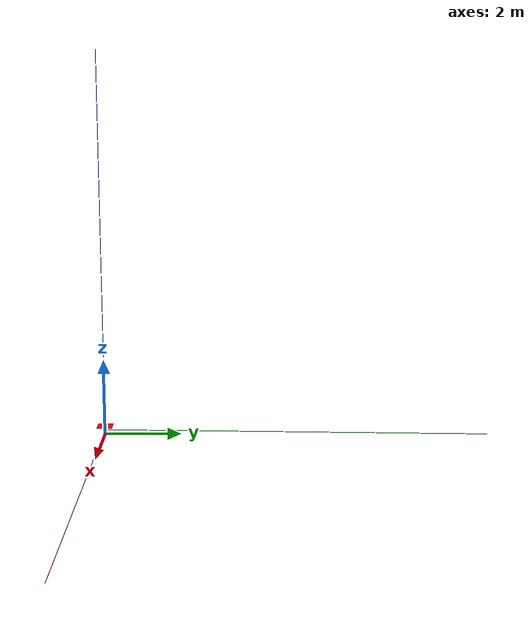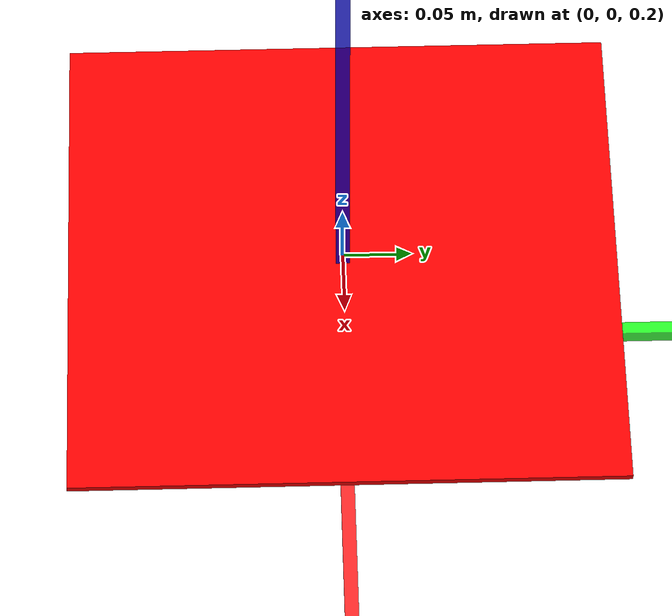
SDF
<sdf version="1.9">
 <world name="runway">
  <physics name="1ms" type="ignore">
   <max_step_size>0.001</max_step_size>
   <real_time_factor>1.0</real_time_factor>
  </physics>
  <plugin filename="gz-sim-physics-system" name="gz::sim::systems::Physics"/>
  <plugin filename="gz-sim-sensors-system" name="gz::sim::systems::Sensors">
   <render_engine>ogre2</render_engine>
  </plugin>
  <plugin filename="gz-sim-user-commands-system" name="gz::sim::systems::UserCommands"/>
  <plugin filename="gz-sim-scene-broadcaster-system" name="gz::sim::systems::SceneBroadcaster"/>
  <plugin filename="gz-sim-imu-system" name="gz::sim::systems::Imu"/>
  <plugin filename="gz-sim-navsat-system" name="gz::sim::systems::NavSat"/>
  <scene><ambient>1.0 1.0 1.0</ambient><background>0.8 0.8 0.8</background></scene>
  <spherical_coordinates>
   <latitude_deg>-35.363262</latitude_deg>
   <longitude_deg>149.165237</longitude_deg>
   <elevation>584</elevation>
   <heading_deg>0</heading_deg>
   <surface_model>EARTH_WGS84</surface_model>
  </spherical_coordinates>
  <light type="directional" name="sun">
   <pose>0 0 10 0 0 0</pose>
   <diffuse>0.8 0.8 0.8 1</diffuse>
   <specular>0.8 0.8 0.8 1</specular>
   <attenuation>
    <range>1000</range>
    <constant>0.9</constant>
    <linear>0.01</linear>
    <quadratic>0.001</quadratic>
   </attenuation>
   <direction>-0.5 0.1 -0.9</direction>
  </light>
  <model name="axes">
   <static>1</static>
   <link name="link">
    <visual name="r">
     <cast_shadows>0</cast_shadows>
     <pose>5 0 0.1 0 0 0</pose>
     <geometry><box><size>10 0.01 0.01</size></box></geometry>
     <material>
      <ambient>1 0 0 0.8</ambient>
      <diffuse>1 0 0 0.8</diffuse>
      <emissive>1 0 0 0.8</emissive>
      <specular>0.5 0.5 0.5 0.8</specular>
     </material>
    </visual>
    <visual name="g">
     <cast_shadows>0</cast_shadows>
     <pose>0 5 0.1 0 0 0</pose>
     <geometry><box><size>0.01 10 0.01</size></box></geometry>
     <material>
      <ambient>0 1 0 0.8</ambient>
      <diffuse>0 1 0 0.8</diffuse>
      <emissive>0 1 0 0.8</emissive>
      <specular>0.5 0.5 0.5 0.8</specular>
     </material>
    </visual>
    <visual name="b">
     <cast_shadows>0</cast_shadows>
     <pose>0 0 5.1 0 0 0</pose>
     <geometry><box><size>0.01 0.01 10</size></box></geometry>
     <material>
      <ambient>0 0 1 0.8</ambient>
      <diffuse>0 0 1 0.8</diffuse>
      <emissive>0 0 1 0.8</emissive>
      <specular>0.5 0.5 0.5 0.8</specular>
     </material>
    </visual>
    <sensor name="navsat_sensor" type="navsat"><always_on>1</always_on><update_rate>1</update_rate></sensor>
   </link>
  </model>
  <include><uri>model://omnifancar</uri><pose degrees="true">0 0 0.195 0 0 90</pose></include>
 </world>
</sdf>

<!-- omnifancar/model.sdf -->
<sdf version="1.7">
  <model name="omnifancar">
    <link name="base_link">
      <inertial>
        <pose>0 0 0 0 0 0</pose>
        <mass>1.5</mass>
        <inertia>
          <ixx>0.009375</ixx>
          <ixy>0</ixy>
          <ixz>0</ixz>
          <iyy>0.009375</iyy>
          <iyz>0</iyz>
          <izz>0.009375</izz>
        </inertia>
      </inertial>
      <collision name="collision">
        <geometry>
          <box>
            <size>0.4 0.4 0.004</size>
          </box>
        </geometry>
      </collision>
      <visual name="visual">
        <pose>0 0 0 0 0 0</pose>
        <geometry>
          <box>
            <size>0.4 0.4 0.004</size>
          </box>
        </geometry>
        <material>
          <ambient>1 0 0</ambient>
          <diffuse>1 0 0</diffuse>
          <specular>0.1 0.1 0.1</specular>
        </material>
      </visual>
    </link>

  </model>
</sdf>
